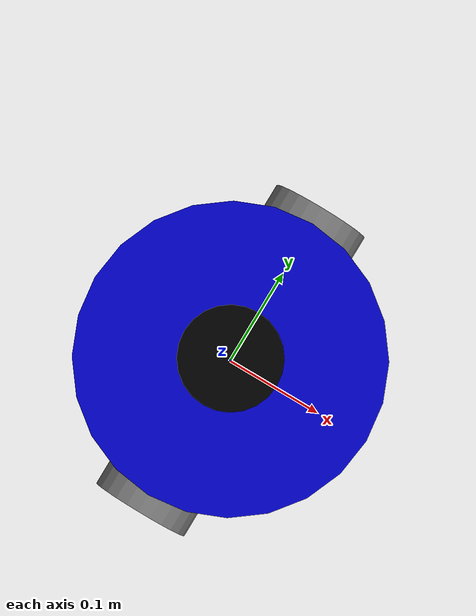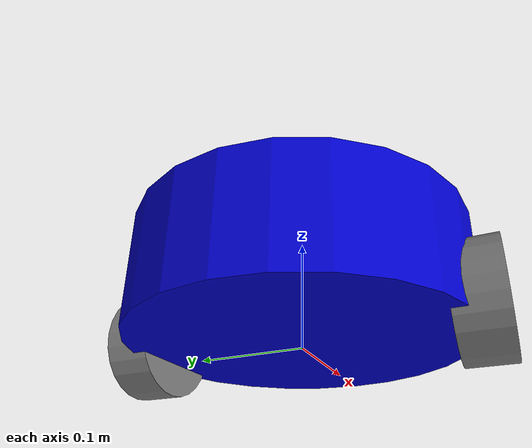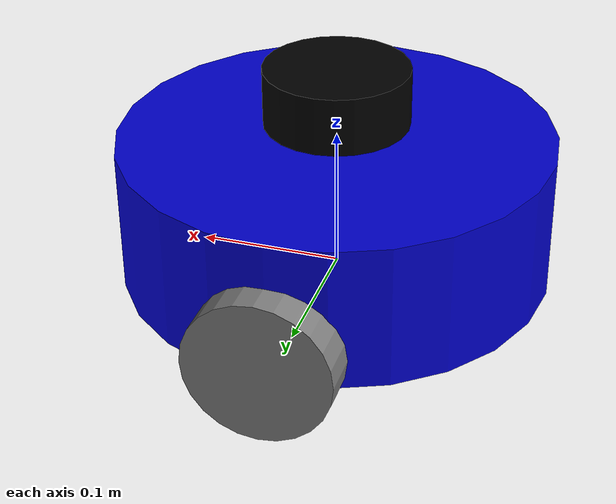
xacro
<?xml version="1.0"?>
<robot name="simple_robot" xmlns:xacro="http://www.ros.org/wiki/xacro">

  <!-- Robot namespace -->
  <xacro:arg name="robot_name" default="robot"/>

  <!-- Constants -->
  <xacro:property name="base_radius" value="0.15"/>
  <xacro:property name="base_height" value="0.1"/>
  <xacro:property name="wheel_radius" value="0.05"/>
  <xacro:property name="wheel_width" value="0.04"/>
  <xacro:property name="wheel_separation" value="0.3"/>

  <!-- ================= BASE ================= -->

  <link name="base_footprint"/>

  <link name="base_link">
    <visual>
      <geometry>
        <cylinder radius="${base_radius}" length="${base_height}"/>
      </geometry>
      <material name="blue">
        <color rgba="0 0 0.8 1"/>
      </material>
    </visual>
    <collision>
      <geometry>
        <cylinder radius="${base_radius}" length="${base_height}"/>
      </geometry>
    </collision>
    <inertial>
      <mass value="5.0"/>
      <inertia ixx="0.01" ixy="0.0" ixz="0.0"
               iyy="0.01" iyz="0.0"
               izz="0.01"/>
    </inertial>
  </link>

  <joint name="base_joint" type="fixed">
    <parent link="base_footprint"/>
    <child link="base_link"/>
    <origin xyz="0 0 0.05" rpy="0 0 0"/>
  </joint>

  <!-- ================= LIDAR (FIXED) ================= -->

  <!-- IMPORTANT:
       Link name is now "lidar" (not lidar_link)
       This MUST match the LaserScan frame_id
  -->

  <link name="lidar">
    <visual>
      <geometry>
        <cylinder radius="0.05" length="0.04"/>
      </geometry>
      <material name="black">
        <color rgba="0 0 0 1"/>
      </material>
    </visual>
    <collision>
      <geometry>
        <cylinder radius="0.05" length="0.04"/>
      </geometry>
    </collision>
    <inertial>
      <mass value="0.1"/>
      <inertia ixx="0.0001" ixy="0.0" ixz="0.0"
               iyy="0.0001" iyz="0.0"
               izz="0.0001"/>
    </inertial>
  </link>

  <joint name="lidar_joint" type="fixed">
    <parent link="base_link"/>
    <child link="lidar"/>
    <origin xyz="0 0 0.08" rpy="0 0 0"/>
  </joint>

  <!-- ================= GAZEBO LIDAR ================= -->

  <gazebo reference="lidar">
    <sensor name="lidar" type="gpu_lidar">
      <pose>0 0 0 0 0 0</pose>
      <frame_name>$(arg robot_name)/lidar</frame_name>
      <topic>$(arg robot_name)/points</topic>
      <update_rate>10</update_rate>

      <lidar>
        <scan>
          <horizontal>
            <samples>360</samples>
            <resolution>1.0</resolution>
            <min_angle>-3.14159</min_angle>
            <max_angle>3.14159</max_angle>
          </horizontal>
          <vertical>
            <samples>16</samples>
            <resolution>1.0</resolution>
            <min_angle>-0.26180</min_angle>
            <max_angle>0.26180</max_angle>
          </vertical>
        </scan>
        <range>
          <min>0.12</min>
          <max>10.0</max>
          <resolution>0.01</resolution>
        </range>
      </lidar>

      <always_on>true</always_on>
      <visualize>true</visualize>
    </sensor>
  </gazebo>

  <!-- ================= DIFF DRIVE (MULTI-ROBOT SAFE) ================= -->

  <gazebo>
    <plugin filename="gz-sim-diff-drive-system"
            name="gz::sim::systems::DiffDrive">

      <left_joint>left_wheel_joint</left_joint>
      <right_joint>right_wheel_joint</right_joint>

      <wheel_separation>${wheel_separation}</wheel_separation>
      <wheel_radius>${wheel_radius}</wheel_radius>

      <topic>$(arg robot_name)/cmd_vel</topic>
      <odom_topic>$(arg robot_name)/odom</odom_topic>

      <!-- CRITICAL FIX -->
      <odom_frame>$(arg robot_name)/odom</odom_frame>
      <child_frame_id>$(arg robot_name)/base_footprint</child_frame_id>

      <publish_odom>true</publish_odom>
      <publish_odom_tf>false</publish_odom_tf>
      <use_sim_time>true</use_sim_time>

      <publish_wheel_tf>false</publish_wheel_tf>
      <odom_publish_frequency>50</odom_publish_frequency>
    </plugin>
  </gazebo>

  <!-- ================= POSE PUBLISHER ================= -->

  <gazebo>
    <plugin filename="gz-sim-pose-publisher-system"
            name="gz::sim::systems::PosePublisher">
      <topic>$(arg robot_name)/tf</topic>
    </plugin>
  </gazebo>

  <!-- ================= WHEELS ================= -->

  <link name="left_wheel">
    <visual>
      <geometry>
        <cylinder radius="${wheel_radius}" length="${wheel_width}"/>
      </geometry>
      <origin xyz="0 0 0" rpy="1.5708 0 0"/>
      <material name="gray">
        <color rgba="0.5 0.5 0.5 1"/>
      </material>
    </visual>
    <collision>
      <geometry>
        <cylinder radius="${wheel_radius}" length="${wheel_width}"/>
      </geometry>
      <origin xyz="0 0 0" rpy="1.5708 0 0"/>
    </collision>
    <inertial>
      <mass value="0.5"/>
      <inertia ixx="0.0001" ixy="0.0" ixz="0.0"
               iyy="0.0001" iyz="0.0"
               izz="0.0001"/>
    </inertial>
  </link>

  <joint name="left_wheel_joint" type="continuous">
    <parent link="base_link"/>
    <child link="left_wheel"/>
    <origin xyz="0 ${wheel_separation/2} -0.03" rpy="0 0 0"/>
    <axis xyz="0 1 0"/>
  </joint>

  <link name="right_wheel">
    <visual>
      <geometry>
        <cylinder radius="${wheel_radius}" length="${wheel_width}"/>
      </geometry>
      <origin xyz="0 0 0" rpy="1.5708 0 0"/>
      <material name="gray">
        <color rgba="0.5 0.5 0.5 1"/>
      </material>
    </visual>
    <collision>
      <geometry>
        <cylinder radius="${wheel_radius}" length="${wheel_width}"/>
      </geometry>
      <origin xyz="0 0 0" rpy="1.5708 0 0"/>
    </collision>
    <inertial>
      <mass value="0.5"/>
      <inertia ixx="0.0001" ixy="0.0" ixz="0.0"
               iyy="0.0001" iyz="0.0"
               izz="0.0001"/>
    </inertial>
  </link>

  <joint name="right_wheel_joint" type="continuous">
    <parent link="base_link"/>
    <child link="right_wheel"/>
    <origin xyz="0 ${-wheel_separation/2} -0.03" rpy="0 0 0"/>
    <axis xyz="0 1 0"/>
  </joint>

</robot>
